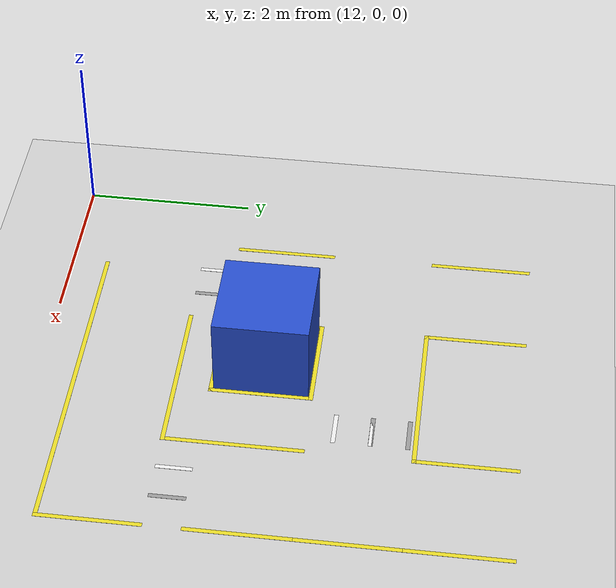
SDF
<sdf version="1.6">
 <world name="default">
  <model name="ground_plane">
   <static>1</static>
   <link name="link">
    <collision name="collision">
     <geometry><plane><normal>0 0 1</normal><size>100 100</size></plane></geometry>
     <surface><friction><ode><mu>100</mu><mu2>50</mu2></ode></friction></surface>
    </collision>
    <visual name="visual">
     <cast_shadows>0</cast_shadows>
     <geometry><plane><normal>0 0 1</normal><size>100 100</size></plane></geometry>
     <material>
      <script><uri>file://media/materials/scripts/gazebo.material</uri><name>Gazebo/Grey</name></script>
     </material>
    </visual>
   </link>
  </model>
  <model name="makine2_120x120">
   <link name="link_0">
    <inertial>
     <mass>1</mass>
     <inertia>
      <ixx>0.166667</ixx>
      <ixy>0</ixy>
      <ixz>0</ixz>
      <iyy>0.166667</iyy>
      <iyz>0</iyz>
      <izz>0.166667</izz>
     </inertia>
    </inertial>
    <visual name="visual">
     <pose>0 0 0.5 0 -0 0</pose>
     <geometry><box><size>1.1 1.1 1</size></box></geometry>
     <material>
      <lighting>1</lighting>
      <script><uri>file://media/materials/scripts/gazebo.material</uri><name>Gazebo/Blue</name></script>
     </material>
    </visual>
    <collision name="collision">
     <pose>0 0 0.5 0 -0 0</pose>
     <geometry><box><size>1.1 1.1 1</size></box></geometry>
     <surface>
      <friction>
       <ode><mu>1</mu><mu2>1</mu2><fdir1>0 0 0</fdir1><slip1>0</slip1><slip2>0</slip2></ode>
       <torsional>
        <coefficient>1</coefficient>
        <patch_radius>0</patch_radius>
        <surface_radius>0</surface_radius>
        <use_patch_radius>1</use_patch_radius>
        <ode><slip>0</slip></ode>
       </torsional>
      </friction>
      <bounce><restitution_coefficient>0</restitution_coefficient><threshold>1e+06</threshold></bounce>
      <contact>
       <collide_without_contact>0</collide_without_contact>
       <collide_without_contact_bitmask>1</collide_without_contact_bitmask>
       <collide_bitmask>1</collide_bitmask>
       <ode>
        <soft_cfm>0</soft_cfm>
        <soft_erp>0.2</soft_erp>
        <kp>1e+13</kp>
        <kd>1</kd>
        <max_vel>0.01</max_vel>
        <min_depth>0</min_depth>
       </ode>
       <bullet>
        <split_impulse>1</split_impulse>
        <split_impulse_penetration_threshold>-0.01</split_impulse_penetration_threshold>
        <soft_cfm>0</soft_cfm>
        <soft_erp>0.2</soft_erp>
        <kp>1e+13</kp>
        <kd>1</kd>
       </bullet>
      </contact>
     </surface>
    </collision>
   </link>
   <static>1</static>
   <pose>14.6 2.6 0 0 -0 0</pose>
  </model>
  <model name="line120cm">
   <link name="link_1">
    <inertial>
     <mass>1</mass>
     <inertia>
      <ixx>0.166667</ixx>
      <ixy>0</ixy>
      <ixz>0</ixz>
      <iyy>0.166667</iyy>
      <iyz>0</iyz>
      <izz>0.166667</izz>
     </inertia>
    </inertial>
    <visual name="visual">
     <geometry><box><size>1.2 0.05 0.001</size></box></geometry>
     <material>
      <script><uri>file://media/materials/scripts/gazebo.material</uri><name>Gazebo/Yellow</name></script>
     </material>
    </visual>
    <collision name="collision">
     <geometry><box><size>1.2 0.05 1e-05</size></box></geometry>
     <surface>
      <friction>
       <ode><mu>1</mu><mu2>1</mu2><fdir1>0 0 0</fdir1><slip1>0</slip1><slip2>0</slip2></ode>
       <torsional>
        <coefficient>1</coefficient>
        <patch_radius>0</patch_radius>
        <surface_radius>0</surface_radius>
        <use_patch_radius>1</use_patch_radius>
        <ode><slip>0</slip></ode>
       </torsional>
      </friction>
      <bounce><restitution_coefficient>0</restitution_coefficient><threshold>1e+06</threshold></bounce>
      <contact>
       <collide_without_contact>0</collide_without_contact>
       <collide_without_contact_bitmask>1</collide_without_contact_bitmask>
       <collide_bitmask>1</collide_bitmask>
       <ode>
        <soft_cfm>0</soft_cfm>
        <soft_erp>0.2</soft_erp>
        <kp>1e+13</kp>
        <kd>1</kd>
        <max_vel>0.01</max_vel>
        <min_depth>0</min_depth>
       </ode>
       <bullet>
        <split_impulse>1</split_impulse>
        <split_impulse_penetration_threshold>-0.01</split_impulse_penetration_threshold>
        <soft_cfm>0</soft_cfm>
        <soft_erp>0.2</soft_erp>
        <kp>1e+13</kp>
        <kd>1</kd>
       </bullet>
      </contact>
     </surface>
    </collision>
   </link>
   <static>1</static>
   <pose>12.775 2.6 0 0 -0 1.5708</pose>
  </model>
  <model name="line120cm_1">
   <link name="link_1">
    <inertial>
     <mass>1</mass>
     <inertia>
      <ixx>0.166667</ixx>
      <ixy>0</ixy>
      <ixz>0</ixz>
      <iyy>0.166667</iyy>
      <iyz>0</iyz>
      <izz>0.166667</izz>
     </inertia>
    </inertial>
    <visual name="visual">
     <geometry><box><size>1.2 0.05 0.001</size></box></geometry>
     <material>
      <script><uri>file://media/materials/scripts/gazebo.material</uri><name>Gazebo/Yellow</name></script>
     </material>
    </visual>
    <collision name="collision">
     <geometry><box><size>1.2 0.05 1e-05</size></box></geometry>
     <surface>
      <friction>
       <ode><mu>1</mu><mu2>1</mu2><fdir1>0 0 0</fdir1><slip1>0</slip1><slip2>0</slip2></ode>
       <torsional>
        <coefficient>1</coefficient>
        <patch_radius>0</patch_radius>
        <surface_radius>0</surface_radius>
        <use_patch_radius>1</use_patch_radius>
        <ode><slip>0</slip></ode>
       </torsional>
      </friction>
      <bounce><restitution_coefficient>0</restitution_coefficient><threshold>1e+06</threshold></bounce>
      <contact>
       <collide_without_contact>0</collide_without_contact>
       <collide_without_contact_bitmask>1</collide_without_contact_bitmask>
       <collide_bitmask>1</collide_bitmask>
       <ode>
        <soft_cfm>0</soft_cfm>
        <soft_erp>0.2</soft_erp>
        <kp>1e+13</kp>
        <kd>1</kd>
        <max_vel>0.01</max_vel>
        <min_depth>0</min_depth>
       </ode>
       <bullet>
        <split_impulse>1</split_impulse>
        <split_impulse_penetration_threshold>-0.01</split_impulse_penetration_threshold>
        <soft_cfm>0</soft_cfm>
        <soft_erp>0.2</soft_erp>
        <kp>1e+13</kp>
        <kd>1</kd>
       </bullet>
      </contact>
     </surface>
    </collision>
   </link>
   <static>1</static>
   <pose>15.175 2.6 0 0 -0 1.5708</pose>
  </model>
  <model name="line120cm_2">
   <link name="link_1">
    <inertial>
     <mass>1</mass>
     <inertia>
      <ixx>0.166667</ixx>
      <ixy>0</ixy>
      <ixz>0</ixz>
      <iyy>0.166667</iyy>
      <iyz>0</iyz>
      <izz>0.166667</izz>
     </inertia>
    </inertial>
    <visual name="visual">
     <geometry><box><size>1.2 0.05 0.001</size></box></geometry>
     <material>
      <script><uri>file://media/materials/scripts/gazebo.material</uri><name>Gazebo/Yellow</name></script>
     </material>
    </visual>
    <collision name="collision">
     <geometry><box><size>1.2 0.05 1e-05</size></box></geometry>
     <surface>
      <friction>
       <ode><mu>1</mu><mu2>1</mu2><fdir1>0 0 0</fdir1><slip1>0</slip1><slip2>0</slip2></ode>
       <torsional>
        <coefficient>1</coefficient>
        <patch_radius>0</patch_radius>
        <surface_radius>0</surface_radius>
        <use_patch_radius>1</use_patch_radius>
        <ode><slip>0</slip></ode>
       </torsional>
      </friction>
      <bounce><restitution_coefficient>0</restitution_coefficient><threshold>1e+06</threshold></bounce>
      <contact>
       <collide_without_contact>0</collide_without_contact>
       <collide_without_contact_bitmask>1</collide_without_contact_bitmask>
       <collide_bitmask>1</collide_bitmask>
       <ode>
        <soft_cfm>0</soft_cfm>
        <soft_erp>0.2</soft_erp>
        <kp>1e+13</kp>
        <kd>1</kd>
        <max_vel>0.01</max_vel>
        <min_depth>0</min_depth>
       </ode>
       <bullet>
        <split_impulse>1</split_impulse>
        <split_impulse_penetration_threshold>-0.01</split_impulse_penetration_threshold>
        <soft_cfm>0</soft_cfm>
        <soft_erp>0.2</soft_erp>
        <kp>1e+13</kp>
        <kd>1</kd>
       </bullet>
      </contact>
     </surface>
    </collision>
   </link>
   <static>1</static>
   <pose>14.6 2.02 0 0 -0 0</pose>
  </model>
  <model name="line120cm_3">
   <link name="link_1">
    <inertial>
     <mass>1</mass>
     <inertia>
      <ixx>0.166667</ixx>
      <ixy>0</ixy>
      <ixz>0</ixz>
      <iyy>0.166667</iyy>
      <iyz>0</iyz>
      <izz>0.166667</izz>
     </inertia>
    </inertial>
    <visual name="visual">
     <geometry><box><size>1.2 0.05 0.001</size></box></geometry>
     <material>
      <script><uri>file://media/materials/scripts/gazebo.material</uri><name>Gazebo/Yellow</name></script>
     </material>
    </visual>
    <collision name="collision">
     <geometry><box><size>1.2 0.05 1e-05</size></box></geometry>
     <surface>
      <friction>
       <ode><mu>1</mu><mu2>1</mu2><fdir1>0 0 0</fdir1><slip1>0</slip1><slip2>0</slip2></ode>
       <torsional>
        <coefficient>1</coefficient>
        <patch_radius>0</patch_radius>
        <surface_radius>0</surface_radius>
        <use_patch_radius>1</use_patch_radius>
        <ode><slip>0</slip></ode>
       </torsional>
      </friction>
      <bounce><restitution_coefficient>0</restitution_coefficient><threshold>1e+06</threshold></bounce>
      <contact>
       <collide_without_contact>0</collide_without_contact>
       <collide_without_contact_bitmask>1</collide_without_contact_bitmask>
       <collide_bitmask>1</collide_bitmask>
       <ode>
        <soft_cfm>0</soft_cfm>
        <soft_erp>0.2</soft_erp>
        <kp>1e+13</kp>
        <kd>1</kd>
        <max_vel>0.01</max_vel>
        <min_depth>0</min_depth>
       </ode>
       <bullet>
        <split_impulse>1</split_impulse>
        <split_impulse_penetration_threshold>-0.01</split_impulse_penetration_threshold>
        <soft_cfm>0</soft_cfm>
        <soft_erp>0.2</soft_erp>
        <kp>1e+13</kp>
        <kd>1</kd>
       </bullet>
      </contact>
     </surface>
    </collision>
   </link>
   <static>1</static>
   <pose>14.025 2.6 0 0 -0 1.5708</pose>
  </model>
  <model name="line120cm_4">
   <link name="link_1">
    <inertial>
     <mass>1</mass>
     <inertia>
      <ixx>0.166667</ixx>
      <ixy>0</ixy>
      <ixz>0</ixz>
      <iyy>0.166667</iyy>
      <iyz>0</iyz>
      <izz>0.166667</izz>
     </inertia>
    </inertial>
    <visual name="visual">
     <geometry><box><size>1.2 0.05 0.001</size></box></geometry>
     <material>
      <script><uri>file://media/materials/scripts/gazebo.material</uri><name>Gazebo/Yellow</name></script>
     </material>
    </visual>
    <collision name="collision">
     <geometry><box><size>1.2 0.05 1e-05</size></box></geometry>
     <surface>
      <friction>
       <ode><mu>1</mu><mu2>1</mu2><fdir1>0 0 0</fdir1><slip1>0</slip1><slip2>0</slip2></ode>
       <torsional>
        <coefficient>1</coefficient>
        <patch_radius>0</patch_radius>
        <surface_radius>0</surface_radius>
        <use_patch_radius>1</use_patch_radius>
        <ode><slip>0</slip></ode>
       </torsional>
      </friction>
      <bounce><restitution_coefficient>0</restitution_coefficient><threshold>1e+06</threshold></bounce>
      <contact>
       <collide_without_contact>0</collide_without_contact>
       <collide_without_contact_bitmask>1</collide_without_contact_bitmask>
       <collide_bitmask>1</collide_bitmask>
       <ode>
        <soft_cfm>0</soft_cfm>
        <soft_erp>0.2</soft_erp>
        <kp>1e+13</kp>
        <kd>1</kd>
        <max_vel>0.01</max_vel>
        <min_depth>0</min_depth>
       </ode>
       <bullet>
        <split_impulse>1</split_impulse>
        <split_impulse_penetration_threshold>-0.01</split_impulse_penetration_threshold>
        <soft_cfm>0</soft_cfm>
        <soft_erp>0.2</soft_erp>
        <kp>1e+13</kp>
        <kd>1</kd>
       </bullet>
      </contact>
     </surface>
    </collision>
   </link>
   <static>1</static>
   <pose>14.6 3.18 0 0 -0 0</pose>
  </model>
  <model name="whiteLine_42_1">
   <link name="link_3">
    <inertial>
     <mass>1</mass>
     <inertia>
      <ixx>0.166667</ixx>
      <ixy>0</ixy>
      <ixz>0</ixz>
      <iyy>0.166667</iyy>
      <iyz>0</iyz>
      <izz>0.166667</izz>
     </inertia>
    </inertial>
    <visual name="visual">
     <pose>-0.21 0 0 0 -0 0</pose>
     <geometry><box><size>0.05 0.42 0.001</size></box></geometry>
     <material>
      <lighting>1</lighting>
      <script><uri>file://media/materials/scripts/gazebo.material</uri><name>Gazebo/White</name></script>
      <shader type="pixel"><normal_map>__default__</normal_map></shader>
      <ambient>1 1 1 1</ambient>
      <diffuse>1 1 1 1</diffuse>
      <specular>0.01 0.01 0.01 1</specular>
      <emissive>0 0 0 1</emissive>
     </material>
    </visual>
    <visual name="ModelPreview_7::link_3::visual_1">
     <pose>0.21 0 0 0 -0 0</pose>
     <geometry><box><size>0.05 0.42 0.001</size></box></geometry>
     <material>
      <lighting>1</lighting>
      <script><uri>file://media/materials/scripts/gazebo.material</uri><name>Gazebo/Grey</name></script>
      <shader type="pixel"><normal_map>__default__</normal_map></shader>
      <ambient>1 1 1 1</ambient>
      <diffuse>1 1 1 1</diffuse>
      <specular>0.01 0.01 0.01 1</specular>
      <emissive>0 0 0 1</emissive>
     </material>
    </visual>
    <collision name="collision">
     <pose>-0.21 0 0 0 -0 0</pose>
     <geometry><box><size>0.05 0.42 1e-05</size></box></geometry>
     <surface>
      <friction>
       <ode><mu>1</mu><mu2>1</mu2><fdir1>0 0 0</fdir1><slip1>0</slip1><slip2>0</slip2></ode>
       <torsional>
        <coefficient>1</coefficient>
        <patch_radius>0</patch_radius>
        <surface_radius>0</surface_radius>
        <use_patch_radius>1</use_patch_radius>
        <ode><slip>0</slip></ode>
       </torsional>
      </friction>
      <bounce><restitution_coefficient>0</restitution_coefficient><threshold>1e+06</threshold></bounce>
      <contact>
       <collide_without_contact>0</collide_without_contact>
       <collide_without_contact_bitmask>1</collide_without_contact_bitmask>
       <collide_bitmask>1</collide_bitmask>
       <ode>
        <soft_cfm>0</soft_cfm>
        <soft_erp>0.2</soft_erp>
        <kp>1e+13</kp>
        <kd>1</kd>
        <max_vel>0.01</max_vel>
        <min_depth>0</min_depth>
       </ode>
       <bullet>
        <split_impulse>1</split_impulse>
        <split_impulse_penetration_threshold>-0.01</split_impulse_penetration_threshold>
        <soft_cfm>0</soft_cfm>
        <soft_erp>0.2</soft_erp>
        <kp>1e+13</kp>
        <kd>1</kd>
       </bullet>
      </contact>
     </surface>
    </collision>
    <collision name="collision_1">
     <pose>0.21 0 0 0 -0 0</pose>
     <geometry><box><size>0.05 0.42 1e-05</size></box></geometry>
     <surface>
      <friction>
       <ode><mu>1</mu><mu2>1</mu2><fdir1>0 0 0</fdir1><slip1>0</slip1><slip2>0</slip2></ode>
       <torsional>
        <coefficient>1</coefficient>
        <patch_radius>0</patch_radius>
        <surface_radius>0</surface_radius>
        <use_patch_radius>1</use_patch_radius>
        <ode><slip>0</slip></ode>
       </torsional>
      </friction>
      <bounce><restitution_coefficient>0</restitution_coefficient><threshold>1e+06</threshold></bounce>
      <contact>
       <collide_without_contact>0</collide_without_contact>
       <collide_without_contact_bitmask>1</collide_without_contact_bitmask>
       <collide_bitmask>1</collide_bitmask>
       <ode>
        <soft_cfm>0</soft_cfm>
        <soft_erp>0.2</soft_erp>
        <kp>1e+13</kp>
        <kd>1</kd>
        <max_vel>0.01</max_vel>
        <min_depth>0</min_depth>
       </ode>
       <bullet>
        <split_impulse>1</split_impulse>
        <split_impulse_penetration_threshold>-0.01</split_impulse_penetration_threshold>
        <soft_cfm>0</soft_cfm>
        <soft_erp>0.2</soft_erp>
        <kp>1e+13</kp>
        <kd>1</kd>
       </bullet>
      </contact>
     </surface>
    </collision>
   </link>
   <static>1</static>
   <pose>13.4 1.8 0 0 -0 0</pose>
  </model>
  <model name="whiteLine_42_2">
   <link name="link_3">
    <inertial>
     <mass>1</mass>
     <inertia>
      <ixx>0.166667</ixx>
      <ixy>0</ixy>
      <ixz>0</ixz>
      <iyy>0.166667</iyy>
      <iyz>0</iyz>
      <izz>0.166667</izz>
     </inertia>
    </inertial>
    <visual name="visual">
     <pose>-0.21 0 0 0 -0 0</pose>
     <geometry><box><size>0.05 0.42 0.001</size></box></geometry>
     <material>
      <lighting>1</lighting>
      <script><uri>file://media/materials/scripts/gazebo.material</uri><name>Gazebo/White</name></script>
      <shader type="pixel"><normal_map>__default__</normal_map></shader>
      <ambient>1 1 1 1</ambient>
      <diffuse>1 1 1 1</diffuse>
      <specular>0.01 0.01 0.01 1</specular>
      <emissive>0 0 0 1</emissive>
     </material>
    </visual>
    <visual name="ModelPreview_7::link_3::visual_1">
     <pose>0.21 0 0 0 -0 0</pose>
     <geometry><box><size>0.05 0.42 0.001</size></box></geometry>
     <material>
      <lighting>1</lighting>
      <script><uri>file://media/materials/scripts/gazebo.material</uri><name>Gazebo/Grey</name></script>
      <shader type="pixel"><normal_map>__default__</normal_map></shader>
      <ambient>1 1 1 1</ambient>
      <diffuse>1 1 1 1</diffuse>
      <specular>0.01 0.01 0.01 1</specular>
      <emissive>0 0 0 1</emissive>
     </material>
    </visual>
    <collision name="collision">
     <pose>-0.21 0 0 0 -0 0</pose>
     <geometry><box><size>0.05 0.42 1e-05</size></box></geometry>
     <surface>
      <friction>
       <ode><mu>1</mu><mu2>1</mu2><fdir1>0 0 0</fdir1><slip1>0</slip1><slip2>0</slip2></ode>
       <torsional>
        <coefficient>1</coefficient>
        <patch_radius>0</patch_radius>
        <surface_radius>0</surface_radius>
        <use_patch_radius>1</use_patch_radius>
        <ode><slip>0</slip></ode>
       </torsional>
      </friction>
      <bounce><restitution_coefficient>0</restitution_coefficient><threshold>1e+06</threshold></bounce>
      <contact>
       <collide_without_contact>0</collide_without_contact>
       <collide_without_contact_bitmask>1</collide_without_contact_bitmask>
       <collide_bitmask>1</collide_bitmask>
       <ode>
        <soft_cfm>0</soft_cfm>
        <soft_erp>0.2</soft_erp>
        <kp>1e+13</kp>
        <kd>1</kd>
        <max_vel>0.01</max_vel>
        <min_depth>0</min_depth>
       </ode>
       <bullet>
        <split_impulse>1</split_impulse>
        <split_impulse_penetration_threshold>-0.01</split_impulse_penetration_threshold>
        <soft_cfm>0</soft_cfm>
        <soft_erp>0.2</soft_erp>
        <kp>1e+13</kp>
        <kd>1</kd>
       </bullet>
      </contact>
     </surface>
    </collision>
    <collision name="collision_1">
     <pose>0.21 0 0 0 -0 0</pose>
     <geometry><box><size>0.05 0.42 1e-05</size></box></geometry>
     <surface>
      <friction>
       <ode><mu>1</mu><mu2>1</mu2><fdir1>0 0 0</fdir1><slip1>0</slip1><slip2>0</slip2></ode>
       <torsional>
        <coefficient>1</coefficient>
        <patch_radius>0</patch_radius>
        <surface_radius>0</surface_radius>
        <use_patch_radius>1</use_patch_radius>
        <ode><slip>0</slip></ode>
       </torsional>
      </friction>
      <bounce><restitution_coefficient>0</restitution_coefficient><threshold>1e+06</threshold></bounce>
      <contact>
       <collide_without_contact>0</collide_without_contact>
       <collide_without_contact_bitmask>1</collide_without_contact_bitmask>
       <collide_bitmask>1</collide_bitmask>
       <ode>
        <soft_cfm>0</soft_cfm>
        <soft_erp>0.2</soft_erp>
        <kp>1e+13</kp>
        <kd>1</kd>
        <max_vel>0.01</max_vel>
        <min_depth>0</min_depth>
       </ode>
       <bullet>
        <split_impulse>1</split_impulse>
        <split_impulse_penetration_threshold>-0.01</split_impulse_penetration_threshold>
        <soft_cfm>0</soft_cfm>
        <soft_erp>0.2</soft_erp>
        <kp>1e+13</kp>
        <kd>1</kd>
       </bullet>
      </contact>
     </surface>
    </collision>
   </link>
   <static>1</static>
   <pose>15.6 3.71087 0 0 -0 1.5708</pose>
  </model>
  <model name="whiteLine_42_3">
   <link name="link_3">
    <inertial>
     <mass>1</mass>
     <inertia>
      <ixx>0.166667</ixx>
      <ixy>0</ixy>
      <ixz>0</ixz>
      <iyy>0.166667</iyy>
      <iyz>0</iyz>
      <izz>0.166667</izz>
     </inertia>
    </inertial>
    <visual name="visual">
     <pose>-0.21 0 0 0 -0 0</pose>
     <geometry><box><size>0.05 0.42 0.001</size></box></geometry>
     <material>
      <lighting>1</lighting>
      <script><uri>file://media/materials/scripts/gazebo.material</uri><name>Gazebo/White</name></script>
      <shader type="pixel"><normal_map>__default__</normal_map></shader>
      <ambient>1 1 1 1</ambient>
      <diffuse>1 1 1 1</diffuse>
      <specular>0.01 0.01 0.01 1</specular>
      <emissive>0 0 0 1</emissive>
     </material>
    </visual>
    <visual name="ModelPreview_7::link_3::visual_1">
     <pose>0.21 0 0 0 -0 0</pose>
     <geometry><box><size>0.05 0.42 0.001</size></box></geometry>
     <material>
      <lighting>1</lighting>
      <script><uri>file://media/materials/scripts/gazebo.material</uri><name>Gazebo/Grey</name></script>
      <shader type="pixel"><normal_map>__default__</normal_map></shader>
      <ambient>1 1 1 1</ambient>
      <diffuse>1 1 1 1</diffuse>
      <specular>0.01 0.01 0.01 1</specular>
      <emissive>0 0 0 1</emissive>
     </material>
    </visual>
    <collision name="collision">
     <pose>-0.21 0 0 0 -0 0</pose>
     <geometry><box><size>0.05 0.42 1e-05</size></box></geometry>
     <surface>
      <friction>
       <ode><mu>1</mu><mu2>1</mu2><fdir1>0 0 0</fdir1><slip1>0</slip1><slip2>0</slip2></ode>
       <torsional>
        <coefficient>1</coefficient>
        <patch_radius>0</patch_radius>
        <surface_radius>0</surface_radius>
        <use_patch_radius>1</use_patch_radius>
        <ode><slip>0</slip></ode>
       </torsional>
      </friction>
      <bounce><restitution_coefficient>0</restitution_coefficient><threshold>1e+06</threshold></bounce>
      <contact>
       <collide_without_contact>0</collide_without_contact>
       <collide_without_contact_bitmask>1</collide_without_contact_bitmask>
       <collide_bitmask>1</collide_bitmask>
       <ode>
        <soft_cfm>0</soft_cfm>
        <soft_erp>0.2</soft_erp>
        <kp>1e+13</kp>
        <kd>1</kd>
        <max_vel>0.01</max_vel>
        <min_depth>0</min_depth>
       </ode>
       <bullet>
        <split_impulse>1</split_impulse>
        <split_impulse_penetration_threshold>-0.01</split_impulse_penetration_threshold>
        <soft_cfm>0</soft_cfm>
        <soft_erp>0.2</soft_erp>
        <kp>1e+13</kp>
        <kd>1</kd>
       </bullet>
      </contact>
     </surface>
    </collision>
    <collision name="collision_1">
     <pose>0.21 0 0 0 -0 0</pose>
     <geometry><box><size>0.05 0.42 1e-05</size></box></geometry>
     <surface>
      <friction>
       <ode><mu>1</mu><mu2>1</mu2><fdir1>0 0 0</fdir1><slip1>0</slip1><slip2>0</slip2></ode>
       <torsional>
        <coefficient>1</coefficient>
        <patch_radius>0</patch_radius>
        <surface_radius>0</surface_radius>
        <use_patch_radius>1</use_patch_radius>
        <ode><slip>0</slip></ode>
       </torsional>
      </friction>
      <bounce><restitution_coefficient>0</restitution_coefficient><threshold>1e+06</threshold></bounce>
      <contact>
       <collide_without_contact>0</collide_without_contact>
       <collide_without_contact_bitmask>1</collide_without_contact_bitmask>
       <collide_bitmask>1</collide_bitmask>
       <ode>
        <soft_cfm>0</soft_cfm>
        <soft_erp>0.2</soft_erp>
        <kp>1e+13</kp>
        <kd>1</kd>
        <max_vel>0.01</max_vel>
        <min_depth>0</min_depth>
       </ode>
       <bullet>
        <split_impulse>1</split_impulse>
        <split_impulse_penetration_threshold>-0.01</split_impulse_penetration_threshold>
        <soft_cfm>0</soft_cfm>
        <soft_erp>0.2</soft_erp>
        <kp>1e+13</kp>
        <kd>1</kd>
       </bullet>
      </contact>
     </surface>
    </collision>
   </link>
   <static>1</static>
   <pose>15.6004 4.13233 -0 0 -0 1.5708</pose>
  </model>
  <model name="line2m">
   <link name="link_0">
    <inertial>
     <mass>1</mass>
     <inertia>
      <ixx>0.166667</ixx>
      <ixy>0</ixy>
      <ixz>0</ixz>
      <iyy>0.166667</iyy>
      <iyz>0</iyz>
      <izz>0.166667</izz>
     </inertia>
    </inertial>
    <visual name="visual">
     <geometry><box><size>2 0.05 0.001</size></box></geometry>
     <material>
      <lighting>1</lighting>
      <script><uri>file://media/materials/scripts/gazebo.material</uri><name>Gazebo/Yellow</name></script>
     </material>
    </visual>
    <collision name="collision">
     <geometry><box><size>2 0.05 1e-05</size></box></geometry>
     <surface>
      <friction>
       <ode><mu>1</mu><mu2>1</mu2><fdir1>0 0 0</fdir1><slip1>0</slip1><slip2>0</slip2></ode>
       <torsional>
        <coefficient>1</coefficient>
        <patch_radius>0</patch_radius>
        <surface_radius>0</surface_radius>
        <use_patch_radius>1</use_patch_radius>
        <ode><slip>0</slip></ode>
       </torsional>
      </friction>
      <bounce><restitution_coefficient>0</restitution_coefficient><threshold>1e+06</threshold></bounce>
      <contact>
       <collide_without_contact>0</collide_without_contact>
       <collide_without_contact_bitmask>1</collide_without_contact_bitmask>
       <collide_bitmask>1</collide_bitmask>
       <ode>
        <soft_cfm>0</soft_cfm>
        <soft_erp>0.2</soft_erp>
        <kp>1e+13</kp>
        <kd>1</kd>
        <max_vel>0.01</max_vel>
        <min_depth>0</min_depth>
       </ode>
       <bullet>
        <split_impulse>1</split_impulse>
        <split_impulse_penetration_threshold>-0.01</split_impulse_penetration_threshold>
        <soft_cfm>0</soft_cfm>
        <soft_erp>0.2</soft_erp>
        <kp>1e+13</kp>
        <kd>1</kd>
       </bullet>
      </contact>
     </surface>
    </collision>
   </link>
   <static>1</static>
   <pose>15 4.425 0 0 -0 0</pose>
  </model>
  <model name="whiteLine_42_6">
   <link name="link_3">
    <inertial>
     <mass>1</mass>
     <inertia>
      <ixx>0.166667</ixx>
      <ixy>0</ixy>
      <ixz>0</ixz>
      <iyy>0.166667</iyy>
      <iyz>0</iyz>
      <izz>0.166667</izz>
     </inertia>
    </inertial>
    <visual name="visual">
     <pose>-0.21 0 0 0 -0 0</pose>
     <geometry><box><size>0.05 0.42 0.001</size></box></geometry>
     <material>
      <lighting>1</lighting>
      <script><uri>file://media/materials/scripts/gazebo.material</uri><name>Gazebo/White</name></script>
      <shader type="pixel"><normal_map>__default__</normal_map></shader>
      <ambient>1 1 1 1</ambient>
      <diffuse>1 1 1 1</diffuse>
      <specular>0.01 0.01 0.01 1</specular>
      <emissive>0 0 0 1</emissive>
     </material>
    </visual>
    <visual name="ModelPreview_7::link_3::visual_1">
     <pose>0.21 0 0 0 -0 0</pose>
     <geometry><box><size>0.05 0.42 0.001</size></box></geometry>
     <material>
      <lighting>1</lighting>
      <script><uri>file://media/materials/scripts/gazebo.material</uri><name>Gazebo/Grey</name></script>
      <shader type="pixel"><normal_map>__default__</normal_map></shader>
      <ambient>1 1 1 1</ambient>
      <diffuse>1 1 1 1</diffuse>
      <specular>0.01 0.01 0.01 1</specular>
      <emissive>0 0 0 1</emissive>
     </material>
    </visual>
    <collision name="collision">
     <pose>-0.21 0 0 0 -0 0</pose>
     <geometry><box><size>0.05 0.42 1e-05</size></box></geometry>
     <surface>
      <friction>
       <ode><mu>1</mu><mu2>1</mu2><fdir1>0 0 0</fdir1><slip1>0</slip1><slip2>0</slip2></ode>
       <torsional>
        <coefficient>1</coefficient>
        <patch_radius>0</patch_radius>
        <surface_radius>0</surface_radius>
        <use_patch_radius>1</use_patch_radius>
        <ode><slip>0</slip></ode>
       </torsional>
      </friction>
      <bounce><restitution_coefficient>0</restitution_coefficient><threshold>1e+06</threshold></bounce>
      <contact>
       <collide_without_contact>0</collide_without_contact>
       <collide_without_contact_bitmask>1</collide_without_contact_bitmask>
       <collide_bitmask>1</collide_bitmask>
       <ode>
        <soft_cfm>0</soft_cfm>
        <soft_erp>0.2</soft_erp>
        <kp>1e+13</kp>
        <kd>1</kd>
        <max_vel>0.01</max_vel>
        <min_depth>0</min_depth>
       </ode>
       <bullet>
        <split_impulse>1</split_impulse>
        <split_impulse_penetration_threshold>-0.01</split_impulse_penetration_threshold>
        <soft_cfm>0</soft_cfm>
        <soft_erp>0.2</soft_erp>
        <kp>1e+13</kp>
        <kd>1</kd>
       </bullet>
      </contact>
     </surface>
    </collision>
    <collision name="collision_1">
     <pose>0.21 0 0 0 -0 0</pose>
     <geometry><box><size>0.05 0.42 1e-05</size></box></geometry>
     <surface>
      <friction>
       <ode><mu>1</mu><mu2>1</mu2><fdir1>0 0 0</fdir1><slip1>0</slip1><slip2>0</slip2></ode>
       <torsional>
        <coefficient>1</coefficient>
        <patch_radius>0</patch_radius>
        <surface_radius>0</surface_radius>
        <use_patch_radius>1</use_patch_radius>
        <ode><slip>0</slip></ode>
       </torsional>
      </friction>
      <bounce><restitution_coefficient>0</restitution_coefficient><threshold>1e+06</threshold></bounce>
      <contact>
       <collide_without_contact>0</collide_without_contact>
       <collide_without_contact_bitmask>1</collide_without_contact_bitmask>
       <collide_bitmask>1</collide_bitmask>
       <ode>
        <soft_cfm>0</soft_cfm>
        <soft_erp>0.2</soft_erp>
        <kp>1e+13</kp>
        <kd>1</kd>
        <max_vel>0.01</max_vel>
        <min_depth>0</min_depth>
       </ode>
       <bullet>
        <split_impulse>1</split_impulse>
        <split_impulse_penetration_threshold>-0.01</split_impulse_penetration_threshold>
        <soft_cfm>0</soft_cfm>
        <soft_erp>0.2</soft_erp>
        <kp>1e+13</kp>
        <kd>1</kd>
       </bullet>
      </contact>
     </surface>
    </collision>
   </link>
   <static>1</static>
   <pose>16.6 1.8 0 0 -0 0</pose>
  </model>
  <model name="line2m_2">
   <link name="link_0">
    <inertial>
     <mass>1</mass>
     <inertia>
      <ixx>0.166667</ixx>
      <ixy>0</ixy>
      <ixz>0</ixz>
      <iyy>0.166667</iyy>
      <iyz>0</iyz>
      <izz>0.166667</izz>
     </inertia>
    </inertial>
    <visual name="visual">
     <geometry><box><size>2 0.05 0.001</size></box></geometry>
     <material>
      <lighting>1</lighting>
      <script><uri>file://media/materials/scripts/gazebo.material</uri><name>Gazebo/Yellow</name></script>
     </material>
    </visual>
    <collision name="collision">
     <geometry><box><size>2 0.05 1e-05</size></box></geometry>
     <surface>
      <friction>
       <ode><mu>1</mu><mu2>1</mu2><fdir1>0 0 0</fdir1><slip1>0</slip1><slip2>0</slip2></ode>
       <torsional>
        <coefficient>1</coefficient>
        <patch_radius>0</patch_radius>
        <surface_radius>0</surface_radius>
        <use_patch_radius>1</use_patch_radius>
        <ode><slip>0</slip></ode>
       </torsional>
      </friction>
      <bounce><restitution_coefficient>0</restitution_coefficient><threshold>1e+06</threshold></bounce>
      <contact>
       <collide_without_contact>0</collide_without_contact>
       <collide_without_contact_bitmask>1</collide_without_contact_bitmask>
       <collide_bitmask>1</collide_bitmask>
       <ode>
        <soft_cfm>0</soft_cfm>
        <soft_erp>0.2</soft_erp>
        <kp>1e+13</kp>
        <kd>1</kd>
        <max_vel>0.01</max_vel>
        <min_depth>0</min_depth>
       </ode>
       <bullet>
        <split_impulse>1</split_impulse>
        <split_impulse_penetration_threshold>-0.01</split_impulse_penetration_threshold>
        <soft_cfm>0</soft_cfm>
        <soft_erp>0.2</soft_erp>
        <kp>1e+13</kp>
        <kd>1</kd>
       </bullet>
      </contact>
     </surface>
    </collision>
   </link>
   <static>1</static>
   <pose>15 1.6 0 0 -0 0</pose>
  </model>
  <model name="line160cm_2">
   <link name="link_1">
    <inertial>
     <mass>1</mass>
     <inertia>
      <ixx>0.166667</ixx>
      <ixy>0</ixy>
      <ixz>0</ixz>
      <iyy>0.166667</iyy>
      <iyz>0</iyz>
      <izz>0.166667</izz>
     </inertia>
    </inertial>
    <visual name="visual">
     <geometry><box><size>1.6 0.05 0.001</size></box></geometry>
     <material>
      <script><uri>file://media/materials/scripts/gazebo.material</uri><name>Gazebo/Yellow</name></script>
     </material>
    </visual>
    <collision name="collision">
     <geometry><box><size>1.6 0.05 1e-05</size></box></geometry>
     <surface>
      <friction>
       <ode><mu>1</mu><mu2>1</mu2><fdir1>0 0 0</fdir1><slip1>0</slip1><slip2>0</slip2></ode>
       <torsional>
        <coefficient>1</coefficient>
        <patch_radius>0</patch_radius>
        <surface_radius>0</surface_radius>
        <use_patch_radius>1</use_patch_radius>
        <ode><slip>0</slip></ode>
       </torsional>
      </friction>
      <bounce><restitution_coefficient>0</restitution_coefficient><threshold>1e+06</threshold></bounce>
      <contact>
       <collide_without_contact>0</collide_without_contact>
       <collide_without_contact_bitmask>1</collide_without_contact_bitmask>
       <collide_bitmask>1</collide_bitmask>
       <ode>
        <soft_cfm>0</soft_cfm>
        <soft_erp>0.2</soft_erp>
        <kp>1e+13</kp>
        <kd>1</kd>
        <max_vel>0.01</max_vel>
        <min_depth>0</min_depth>
       </ode>
       <bullet>
        <split_impulse>1</split_impulse>
        <split_impulse_penetration_threshold>-0.01</split_impulse_penetration_threshold>
        <soft_cfm>0</soft_cfm>
        <soft_erp>0.2</soft_erp>
        <kp>1e+13</kp>
        <kd>1</kd>
       </bullet>
      </contact>
     </surface>
    </collision>
   </link>
   <static>1</static>
   <pose>15.975 2.405 0 0 -0 1.5708</pose>
  </model>
  <model name="line120cm_9">
   <link name="link_1">
    <inertial>
     <mass>1</mass>
     <inertia>
      <ixx>0.166667</ixx>
      <ixy>0</ixy>
      <ixz>0</ixz>
      <iyy>0.166667</iyy>
      <iyz>0</iyz>
      <izz>0.166667</izz>
     </inertia>
    </inertial>
    <visual name="visual">
     <geometry><box><size>1.2 0.05 0.001</size></box></geometry>
     <material>
      <script><uri>file://media/materials/scripts/gazebo.material</uri><name>Gazebo/Yellow</name></script>
     </material>
    </visual>
    <collision name="collision">
     <geometry><box><size>1.2 0.05 1e-05</size></box></geometry>
     <surface>
      <friction>
       <ode><mu>1</mu><mu2>1</mu2><fdir1>0 0 0</fdir1><slip1>0</slip1><slip2>0</slip2></ode>
       <torsional>
        <coefficient>1</coefficient>
        <patch_radius>0</patch_radius>
        <surface_radius>0</surface_radius>
        <use_patch_radius>1</use_patch_radius>
        <ode><slip>0</slip></ode>
       </torsional>
      </friction>
      <bounce><restitution_coefficient>0</restitution_coefficient><threshold>1e+06</threshold></bounce>
      <contact>
       <collide_without_contact>0</collide_without_contact>
       <collide_without_contact_bitmask>1</collide_without_contact_bitmask>
       <collide_bitmask>1</collide_bitmask>
       <ode>
        <soft_cfm>0</soft_cfm>
        <soft_erp>0.2</soft_erp>
        <kp>1e+13</kp>
        <kd>1</kd>
        <max_vel>0.01</max_vel>
        <min_depth>0</min_depth>
       </ode>
       <bullet>
        <split_impulse>1</split_impulse>
        <split_impulse_penetration_threshold>-0.01</split_impulse_penetration_threshold>
        <soft_cfm>0</soft_cfm>
        <soft_erp>0.2</soft_erp>
        <kp>1e+13</kp>
        <kd>1</kd>
       </bullet>
      </contact>
     </surface>
    </collision>
   </link>
   <static>1</static>
   <pose>14.025 5 0 0 -0 1.5708</pose>
  </model>
  <model name="line120cm_10">
   <link name="link_1">
    <inertial>
     <mass>1</mass>
     <inertia>
      <ixx>0.166667</ixx>
      <ixy>0</ixy>
      <ixz>0</ixz>
      <iyy>0.166667</iyy>
      <iyz>0</iyz>
      <izz>0.166667</izz>
     </inertia>
    </inertial>
    <visual name="visual">
     <geometry><box><size>1.2 0.05 0.001</size></box></geometry>
     <material>
      <script><uri>file://media/materials/scripts/gazebo.material</uri><name>Gazebo/Yellow</name></script>
     </material>
    </visual>
    <collision name="collision">
     <geometry><box><size>1.2 0.05 1e-05</size></box></geometry>
     <surface>
      <friction>
       <ode><mu>1</mu><mu2>1</mu2><fdir1>0 0 0</fdir1><slip1>0</slip1><slip2>0</slip2></ode>
       <torsional>
        <coefficient>1</coefficient>
        <patch_radius>0</patch_radius>
        <surface_radius>0</surface_radius>
        <use_patch_radius>1</use_patch_radius>
        <ode><slip>0</slip></ode>
       </torsional>
      </friction>
      <bounce><restitution_coefficient>0</restitution_coefficient><threshold>1e+06</threshold></bounce>
      <contact>
       <collide_without_contact>0</collide_without_contact>
       <collide_without_contact_bitmask>1</collide_without_contact_bitmask>
       <collide_bitmask>1</collide_bitmask>
       <ode>
        <soft_cfm>0</soft_cfm>
        <soft_erp>0.2</soft_erp>
        <kp>1e+13</kp>
        <kd>1</kd>
        <max_vel>0.01</max_vel>
        <min_depth>0</min_depth>
       </ode>
       <bullet>
        <split_impulse>1</split_impulse>
        <split_impulse_penetration_threshold>-0.01</split_impulse_penetration_threshold>
        <soft_cfm>0</soft_cfm>
        <soft_erp>0.2</soft_erp>
        <kp>1e+13</kp>
        <kd>1</kd>
       </bullet>
      </contact>
     </surface>
    </collision>
   </link>
   <static>1</static>
   <pose>15.975 5 0 0 -0 1.5708</pose>
  </model>
  <model name="line120cm_11">
   <link name="link_1">
    <inertial>
     <mass>1</mass>
     <inertia>
      <ixx>0.166667</ixx>
      <ixy>0</ixy>
      <ixz>0</ixz>
      <iyy>0.166667</iyy>
      <iyz>0</iyz>
      <izz>0.166667</izz>
     </inertia>
    </inertial>
    <visual name="visual">
     <geometry><box><size>1.2 0.05 0.001</size></box></geometry>
     <material>
      <script><uri>file://media/materials/scripts/gazebo.material</uri><name>Gazebo/Yellow</name></script>
     </material>
    </visual>
    <collision name="collision">
     <geometry><box><size>1.2 0.05 1e-05</size></box></geometry>
     <surface>
      <friction>
       <ode><mu>1</mu><mu2>1</mu2><fdir1>0 0 0</fdir1><slip1>0</slip1><slip2>0</slip2></ode>
       <torsional>
        <coefficient>1</coefficient>
        <patch_radius>0</patch_radius>
        <surface_radius>0</surface_radius>
        <use_patch_radius>1</use_patch_radius>
        <ode><slip>0</slip></ode>
       </torsional>
      </friction>
      <bounce><restitution_coefficient>0</restitution_coefficient><threshold>1e+06</threshold></bounce>
      <contact>
       <collide_without_contact>0</collide_without_contact>
       <collide_without_contact_bitmask>1</collide_without_contact_bitmask>
       <collide_bitmask>1</collide_bitmask>
       <ode>
        <soft_cfm>0</soft_cfm>
        <soft_erp>0.2</soft_erp>
        <kp>1e+13</kp>
        <kd>1</kd>
        <max_vel>0.01</max_vel>
        <min_depth>0</min_depth>
       </ode>
       <bullet>
        <split_impulse>1</split_impulse>
        <split_impulse_penetration_threshold>-0.01</split_impulse_penetration_threshold>
        <soft_cfm>0</soft_cfm>
        <soft_erp>0.2</soft_erp>
        <kp>1e+13</kp>
        <kd>1</kd>
       </bullet>
      </contact>
     </surface>
    </collision>
   </link>
   <static>1</static>
   <pose>12.775 5 0 0 -0 1.5708</pose>
  </model>
  <model name="line120cm_12">
   <link name="link_1">
    <inertial>
     <mass>1</mass>
     <inertia>
      <ixx>0.166667</ixx>
      <ixy>0</ixy>
      <ixz>0</ixz>
      <iyy>0.166667</iyy>
      <iyz>0</iyz>
      <izz>0.166667</izz>
     </inertia>
    </inertial>
    <visual name="visual">
     <geometry><box><size>1.2 0.05 0.001</size></box></geometry>
     <material>
      <script><uri>file://media/materials/scripts/gazebo.material</uri><name>Gazebo/Yellow</name></script>
     </material>
    </visual>
    <collision name="collision">
     <geometry><box><size>1.2 0.05 1e-05</size></box></geometry>
     <surface>
      <friction>
       <ode><mu>1</mu><mu2>1</mu2><fdir1>0 0 0</fdir1><slip1>0</slip1><slip2>0</slip2></ode>
       <torsional>
        <coefficient>1</coefficient>
        <patch_radius>0</patch_radius>
        <surface_radius>0</surface_radius>
        <use_patch_radius>1</use_patch_radius>
        <ode><slip>0</slip></ode>
       </torsional>
      </friction>
      <bounce><restitution_coefficient>0</restitution_coefficient><threshold>1e+06</threshold></bounce>
      <contact>
       <collide_without_contact>0</collide_without_contact>
       <collide_without_contact_bitmask>1</collide_without_contact_bitmask>
       <collide_bitmask>1</collide_bitmask>
       <ode>
        <soft_cfm>0</soft_cfm>
        <soft_erp>0.2</soft_erp>
        <kp>1e+13</kp>
        <kd>1</kd>
        <max_vel>0.01</max_vel>
        <min_depth>0</min_depth>
       </ode>
       <bullet>
        <split_impulse>1</split_impulse>
        <split_impulse_penetration_threshold>-0.01</split_impulse_penetration_threshold>
        <soft_cfm>0</soft_cfm>
        <soft_erp>0.2</soft_erp>
        <kp>1e+13</kp>
        <kd>1</kd>
       </bullet>
      </contact>
     </surface>
    </collision>
   </link>
   <static>1</static>
   <pose>17.225 5 0 0 -0 1.5708</pose>
  </model>
  <model name="line120cm_13">
   <link name="link_1">
    <inertial>
     <mass>1</mass>
     <inertia>
      <ixx>0.166667</ixx>
      <ixy>0</ixy>
      <ixz>0</ixz>
      <iyy>0.166667</iyy>
      <iyz>0</iyz>
      <izz>0.166667</izz>
     </inertia>
    </inertial>
    <visual name="visual">
     <geometry><box><size>1.2 0.05 0.001</size></box></geometry>
     <material>
      <script><uri>file://media/materials/scripts/gazebo.material</uri><name>Gazebo/Yellow</name></script>
     </material>
    </visual>
    <collision name="collision">
     <geometry><box><size>1.2 0.05 1e-05</size></box></geometry>
     <surface>
      <friction>
       <ode><mu>1</mu><mu2>1</mu2><fdir1>0 0 0</fdir1><slip1>0</slip1><slip2>0</slip2></ode>
       <torsional>
        <coefficient>1</coefficient>
        <patch_radius>0</patch_radius>
        <surface_radius>0</surface_radius>
        <use_patch_radius>1</use_patch_radius>
        <ode><slip>0</slip></ode>
       </torsional>
      </friction>
      <bounce><restitution_coefficient>0</restitution_coefficient><threshold>1e+06</threshold></bounce>
      <contact>
       <collide_without_contact>0</collide_without_contact>
       <collide_without_contact_bitmask>1</collide_without_contact_bitmask>
       <collide_bitmask>1</collide_bitmask>
       <ode>
        <soft_cfm>0</soft_cfm>
        <soft_erp>0.2</soft_erp>
        <kp>1e+13</kp>
        <kd>1</kd>
        <max_vel>0.01</max_vel>
        <min_depth>0</min_depth>
       </ode>
       <bullet>
        <split_impulse>1</split_impulse>
        <split_impulse_penetration_threshold>-0.01</split_impulse_penetration_threshold>
        <soft_cfm>0</soft_cfm>
        <soft_erp>0.2</soft_erp>
        <kp>1e+13</kp>
        <kd>1</kd>
       </bullet>
      </contact>
     </surface>
    </collision>
   </link>
   <static>1</static>
   <pose>17.225 3.8 0 0 -0 1.5708</pose>
  </model>
  <model name="line120cm_14">
   <link name="link_1">
    <inertial>
     <mass>1</mass>
     <inertia>
      <ixx>0.166667</ixx>
      <ixy>0</ixy>
      <ixz>0</ixz>
      <iyy>0.166667</iyy>
      <iyz>0</iyz>
      <izz>0.166667</izz>
     </inertia>
    </inertial>
    <visual name="visual">
     <geometry><box><size>1.2 0.05 0.001</size></box></geometry>
     <material>
      <script><uri>file://media/materials/scripts/gazebo.material</uri><name>Gazebo/Yellow</name></script>
     </material>
    </visual>
    <collision name="collision">
     <geometry><box><size>1.2 0.05 1e-05</size></box></geometry>
     <surface>
      <friction>
       <ode><mu>1</mu><mu2>1</mu2><fdir1>0 0 0</fdir1><slip1>0</slip1><slip2>0</slip2></ode>
       <torsional>
        <coefficient>1</coefficient>
        <patch_radius>0</patch_radius>
        <surface_radius>0</surface_radius>
        <use_patch_radius>1</use_patch_radius>
        <ode><slip>0</slip></ode>
       </torsional>
      </friction>
      <bounce><restitution_coefficient>0</restitution_coefficient><threshold>1e+06</threshold></bounce>
      <contact>
       <collide_without_contact>0</collide_without_contact>
       <collide_without_contact_bitmask>1</collide_without_contact_bitmask>
       <collide_bitmask>1</collide_bitmask>
       <ode>
        <soft_cfm>0</soft_cfm>
        <soft_erp>0.2</soft_erp>
        <kp>1e+13</kp>
        <kd>1</kd>
        <max_vel>0.01</max_vel>
        <min_depth>0</min_depth>
       </ode>
       <bullet>
        <split_impulse>1</split_impulse>
        <split_impulse_penetration_threshold>-0.01</split_impulse_penetration_threshold>
        <soft_cfm>0</soft_cfm>
        <soft_erp>0.2</soft_erp>
        <kp>1e+13</kp>
        <kd>1</kd>
       </bullet>
      </contact>
     </surface>
    </collision>
   </link>
   <static>1</static>
   <pose>17.225 2.625 0 0 -0 1.5708</pose>
  </model>
  <model name="line120cm_15">
   <link name="link_1">
    <inertial>
     <mass>1</mass>
     <inertia>
      <ixx>0.166667</ixx>
      <ixy>0</ixy>
      <ixz>0</ixz>
      <iyy>0.166667</iyy>
      <iyz>0</iyz>
      <izz>0.166667</izz>
     </inertia>
    </inertial>
    <visual name="visual">
     <geometry><box><size>1.2 0.05 0.001</size></box></geometry>
     <material>
      <script><uri>file://media/materials/scripts/gazebo.material</uri><name>Gazebo/Yellow</name></script>
     </material>
    </visual>
    <collision name="collision">
     <geometry><box><size>1.2 0.05 1e-05</size></box></geometry>
     <surface>
      <friction>
       <ode><mu>1</mu><mu2>1</mu2><fdir1>0 0 0</fdir1><slip1>0</slip1><slip2>0</slip2></ode>
       <torsional>
        <coefficient>1</coefficient>
        <patch_radius>0</patch_radius>
        <surface_radius>0</surface_radius>
        <use_patch_radius>1</use_patch_radius>
        <ode><slip>0</slip></ode>
       </torsional>
      </friction>
      <bounce><restitution_coefficient>0</restitution_coefficient><threshold>1e+06</threshold></bounce>
      <contact>
       <collide_without_contact>0</collide_without_contact>
       <collide_without_contact_bitmask>1</collide_without_contact_bitmask>
       <collide_bitmask>1</collide_bitmask>
       <ode>
        <soft_cfm>0</soft_cfm>
        <soft_erp>0.2</soft_erp>
        <kp>1e+13</kp>
        <kd>1</kd>
        <max_vel>0.01</max_vel>
        <min_depth>0</min_depth>
       </ode>
       <bullet>
        <split_impulse>1</split_impulse>
        <split_impulse_penetration_threshold>-0.01</split_impulse_penetration_threshold>
        <soft_cfm>0</soft_cfm>
        <soft_erp>0.2</soft_erp>
        <kp>1e+13</kp>
        <kd>1</kd>
       </bullet>
      </contact>
     </surface>
    </collision>
   </link>
   <static>1</static>
   <pose>17.225 1 0 0 -0 1.5708</pose>
  </model>
  <model name="line4m">
   <link name="link_3">
    <inertial>
     <mass>1</mass>
     <inertia>
      <ixx>0.166667</ixx>
      <ixy>0</ixy>
      <ixz>0</ixz>
      <iyy>0.166667</iyy>
      <iyz>0</iyz>
      <izz>0.166667</izz>
     </inertia>
    </inertial>
    <visual name="visual">
     <geometry><box><size>0.05 4 0.001</size></box></geometry>
     <material>
      <lighting>1</lighting>
      <script><uri>file://media/materials/scripts/gazebo.material</uri><name>Gazebo/Yellow</name></script>
     </material>
    </visual>
    <collision name="collision">
     <geometry><box><size>0.05 4 1e-06</size></box></geometry>
     <surface>
      <friction>
       <ode><mu>1</mu><mu2>1</mu2><fdir1>0 0 0</fdir1><slip1>0</slip1><slip2>0</slip2></ode>
       <torsional>
        <coefficient>1</coefficient>
        <patch_radius>0</patch_radius>
        <surface_radius>0</surface_radius>
        <use_patch_radius>1</use_patch_radius>
        <ode><slip>0</slip></ode>
       </torsional>
      </friction>
      <bounce><restitution_coefficient>0</restitution_coefficient><threshold>1e+06</threshold></bounce>
      <contact>
       <collide_without_contact>0</collide_without_contact>
       <collide_without_contact_bitmask>1</collide_without_contact_bitmask>
       <collide_bitmask>1</collide_bitmask>
       <ode>
        <soft_cfm>0</soft_cfm>
        <soft_erp>0.2</soft_erp>
        <kp>1e+13</kp>
        <kd>1</kd>
        <max_vel>0.01</max_vel>
        <min_depth>0</min_depth>
       </ode>
       <bullet>
        <split_impulse>1</split_impulse>
        <split_impulse_penetration_threshold>-0.01</split_impulse_penetration_threshold>
        <soft_cfm>0</soft_cfm>
        <soft_erp>0.2</soft_erp>
        <kp>1e+13</kp>
        <kd>1</kd>
       </bullet>
      </contact>
     </surface>
    </collision>
   </link>
   <static>1</static>
   <pose>15.2001 0.425 0 0 -0 1.5708</pose>
  </model>
 </world>
</sdf>
